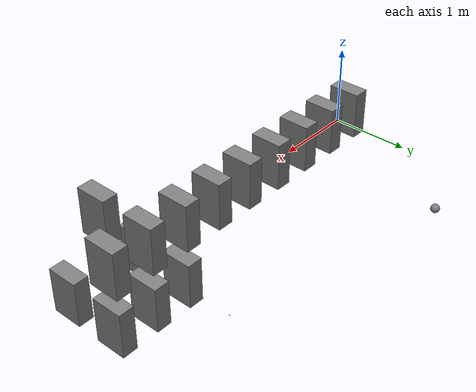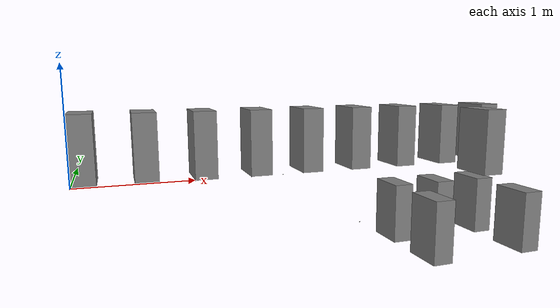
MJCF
<!-- For validating dynamics of joints:

* free, ball, slide, hinge joints
* stacked joints (e.g. hinge + slide, ball + slide, etc)
* n-link kinematic chains
* limits, armature, damping
-->
<mujoco model="pendula">
  <compiler autolimits="true"/>

  <option timestep="0.02">
    <flag contact="disable" />
  </option>

  <default>
    <geom type="box" pos=".1 .2 .3" size=".1 .2 .3"/>
    <joint damping="0.25" stiffness="0.1"/>
  </default>

  <worldbody>
    <site name="origin"/>
    <camera pos="0 1.5 0.8" xyaxes="-1 0 0 0 -0.2 .8"/>
    <light pos="0 1.5 0.8" dir="0.1 -0.9 0"/>
    <camera mode="targetbodycom" pos="1 -1 2"/>
    <light mode="targetbodycom" pos="1 -1 2"/>
    <camera mode="targetbodycom" target="body" pos="0 -1 2"/>
    <light mode="targetbodycom" target="body" pos="0 -1 2"/>
    <camera mode="targetbody" target="body" pos="0 -1 -2"/>
    <light mode="targetbody" target="body" pos="0 -1 -2"/>

    <!-- a single free body -->
    <body pos="0 0 0">
      <camera mode="fixed" pos="0 0.1 0.1" euler="2.7 0 0"/>
      <light mode="fixed" pos="0 0.1 0.1" dir="0 0.02 -0.98"/>
      <camera pos="-3 0 1" xyaxes="0 -1 0 1 0 2" mode="trackcom"/>
      <light pos="-3 0 1" dir="0 -1 0" mode="trackcom"/>
      <camera pos="-3 0 1" xyaxes="0 -1 0 1 0 2" mode="track"/>
      <light pos="-3 0 1" dir="0 -1 0" mode="track"/>
      <freejoint/>
      <geom/>
    </body>

    <!-- a single ball joint with a limit -->
    <body name="body" pos="0.5 0 0">
      <joint name="joint1" type="ball" range="0 35"/>
      <site name="s1" pos="1.3 0 0"/>
      <geom/>
    </body>

    <!-- a single slide joint with a limit -->
    <body pos="1.0 0 0">
      <joint name="joint2" type="slide" axis="0.1 0.2 0.3" range="-1 1"/>
      <site name="s2"/>
      <geom/>
    </body>

    <!-- a single hinge joint with a limit -->
    <body pos="1.5 0 0">
      <joint name="joint3" type="hinge" axis="0.1 0.2 0.3" range="-35 50"/>
      <site name="s3" quat="1 0 1 0"/>
      <geom/>
    </body>

    <!-- stacked joint: hinge + slide -->
    <body pos="2.0 0 0">
      <joint name="joint4" type="hinge" axis="0.1 0.2 0.3"/>
      <joint name="joint5" type="slide" axis="0.4 0.5 0.6" range="0 1"/>
      <geom/>
    </body>

    <!-- stacked joint: slide + ball -->
    <body pos="2.5 0 0">
      <joint name="joint6" type="slide" axis="0.4 0.5 0.6" range="0 1"/>
      <joint type="ball"/>
      <geom/>
    </body>

    <!-- triple pendulum of hinges -->
    <body pos="3.0 0 0">
      <joint name="joint7" axis="0.1 0.2 0.3" type="hinge"/>
      <geom/>
      <body pos="0 0 -0.8">
        <joint name="joint8" axis="0.4 0.5 0.6" type="hinge" armature="0.02" range="-20 20"/>
        <geom/>
        <body pos="0 -0.7 0">
          <joint name="joint9" axis="0.7 0.8 0.9" type="hinge" damping="0.75" range="-30 30"/>
          <site name="s4" pos="0 1.5 0" quat="1 0 1 0"/>
          <geom/>
        </body>
      </body>
    </body>

    <!-- cherry pendulum: two bodies attached to same parent body -->
    <body pos="3.5 0 0">
      <joint name="joint10" type="ball" damping="0.5" />
      <geom/>
      <body pos="0 0 -0.8">
        <joint name="joint11" axis="0.4 0.5 0.6" type="hinge" armature="0.02" range="-20 20"/>
        <geom/>
      </body>
      <body pos="0 -0.7 0">
        <joint name="joint12" axis="0.7 0.8 0.9" type="hinge" damping="0.75" range="-30 30"/>
        <geom/>
      </body>
    </body>

    <!-- falling pendulum -->
    <body pos="4.0 0 0">
      <freejoint name="freejoint"/>
      <geom/>
      <body pos="0 0 -0.8">
        <joint name="joint13" axis="0.4 0.5 0.6" type="slide" armature="0.02" range="-0.4 0.6"/>
        <geom/>
        <body pos="0 -0.7 0">
          <joint name="joint14" axis="0.7 0.8 0.9" type="hinge" damping="0.75" range="-30 30"/>
          <geom/>
        </body>
      </body>
    </body>

    <!-- triple pendulum of hinges with gravcomp -->
    <body pos="3.0 0 0" gravcomp="1">
      <joint name="joint15" axis="0.1 0.2 0.3" type="hinge"/>
      <geom/>
      <body pos="0 0 -0.8" gravcomp="2">
        <joint name="joint16" axis="0.4 0.5 0.6" type="hinge" armature="0.02" range="-20 20"/>
        <geom/>
        <body pos="0 -0.7 0" gravcomp="3">
          <joint name="joint17" axis="0.7 0.8 0.9" type="hinge" damping="0.75" range="-30 30" actuatorgravcomp="true"/>
          <geom/>
        </body>
      </body>
    </body>

    <body mocap="true">
      <geom type="sphere" size="0.05"/>
    </body>
    <body mocap="true" pos="1.0 2.0 0.5" quat="1 0 1 0">
      <geom type="sphere" size="0.05"/>
    </body>
  </worldbody>

  <tendon>
    <fixed name="tendon_1" limited="true" range="-0.3 0.1" stiffness=".1" damping=".2">
      <joint joint="joint2" coef=".1"/>
      <joint joint="joint3" coef="-.2"/>
    </fixed>
    <fixed name="tendon_2" limited="true" range="-0.3 2" springlength="0 0.05" stiffness=".3" damping=".4">
      <joint joint="joint4" coef=".3"/>
      <joint joint="joint5" coef="-.4"/>
    </fixed>
  </tendon>

  <actuator>
    <motor gear="250 0 0" joint="joint1" name="act1"/>
    <motor gear="0 275 0" joint="joint1" name="act2"/>
    <motor gear="0 0 300" joint="joint1" name="act3"/>
    <motor gear="275" joint="joint2" name="act4"/>
    <motor gear="275" joint="joint3" name="act5"/>
    <motor gear="150" joint="joint15" name="act6"/>
    <motor gear="150" joint="joint16" name="act7"/>
    <motor gear="150" joint="joint17" name="act8"/>
    <position tendon="tendon_2" kp="100"/>
    <motor gear="2 3 4" jointinparent="joint1"/>
    <motor gear="5 6 7 8 9 10" jointinparent="freejoint"/>
  </actuator>
  <keyframe>
    <key name="random"
         qpos="0.37454012 0.95071431 0.73199394 0.59865848 0.15601864 0.15599452
               0.05808361 0.86617615 0.60111501 0.70807258 0.02058449 0.96990985
               0.83244264 0.21233911 0.18182497 0.18340451 0.30424224 0.52475643
               0.43194502 0.29122914 0.61185289 0.13949386 0.29214465 0.36636184
               0.45606998 0.78517596 0.19967378 0.51423444 0.59241457 0.04645041
               0.60754485 0.17052412 0.06505159 0.94888554 0.96563203 0.80839735
               0.30461377 0.09767211 0.68423303 0.44015249 0.12203823"
         mpos="-0.5336488 -0.00552786 -0.22945045 0.38934891 -1.26511911 1.09199226"
         mquat="0.73259794 0.31474423 0.05765152 0.23250667 -0.26608011 -0.41749006 0.20401277 -0.14189959"/>
  </keyframe>
</mujoco>
